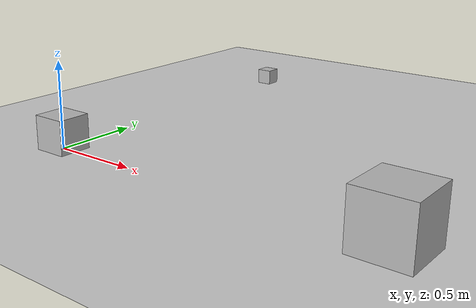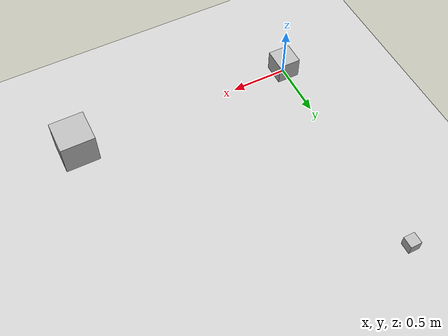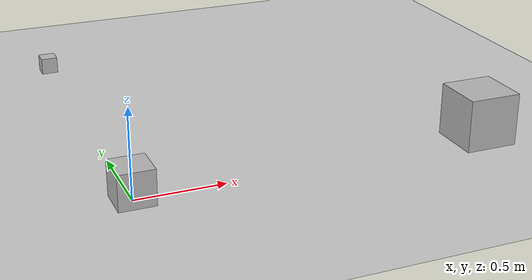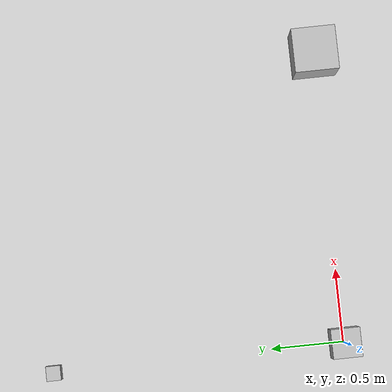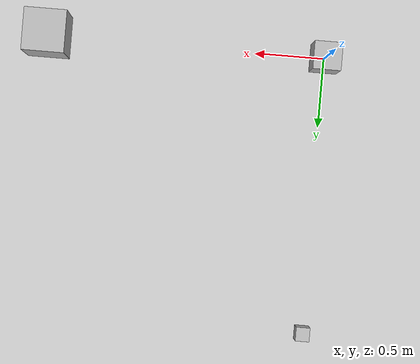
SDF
<?xml version="1.0" ?>
<sdf version="1.5">
  <world name="default">
    <!-- A global light source -->
    <include>
      <uri>model://sun</uri>
    </include>
    <!-- A ground plane -->
    <include>
      <uri>model://ground_plane</uri>
    </include>

    <model name="box1">
      <pose>0 0 0.1 0 0 0</pose>
      <link name="link">
        <kinematic>true</kinematic>
        <collision name="collision">
          <geometry>
            <box>
              <size>0.2 0.2 0.2</size>
            </box>
          </geometry>
          <surface>
            <friction>
              <ode>
                <mu>0.0</mu>
                <mu2>0.0</mu2>
              </ode>
            </friction>
          </surface>
        </collision>
        <visual name="visual">
          <geometry>
            <box>
              <size>0.2 0.2 0.2</size>
            </box>
          </geometry>
        </visual>
      </link>

      <!-- Apply a random velocity to the specified link-->
      <!-- In this example, we move a box around. A key property of the link
           is the frictionless surface -->
      <plugin name="random" filename="libRandomVelocityPlugin.so">

        <!-- Name of the link in this model that receives the velocity -->
        <link>link</link>

        <!-- Initial velocity that is applied to the link -->
        <initial_velocity>0 0 0</initial_velocity>

        <!-- Scaling factor that is used to compute a new velocity -->
        <velocity_factor>0.5</velocity_factor>

        <!-- Time, in seconds, between new velocities -->
        <update_period>1</update_period>

        <!-- Clamp the Z velocity value to zero. You can also clamp x and
             y values -->
        <min_z>0</min_z>
        <max_z>0</max_z>
      </plugin>
    </model>

    <model name="box2">
      <pose>2 0 0.15 0 0 0</pose>
      <link name="link">
        <kinematic>true</kinematic>
        <collision name="collision">
          <geometry>
            <box>
              <size>0.3 0.3 0.3</size>
            </box>
          </geometry>
          <surface>
            <friction>
              <ode>
                <mu>0.0</mu>
                <mu2>0.0</mu2>
              </ode>
            </friction>
          </surface>
        </collision>
        <visual name="visual">
          <geometry>
            <box>
              <size>0.3 0.3 0.3</size>
            </box>
          </geometry>
        </visual>
      </link>

      <!-- Apply a random velocity to the specified link-->
      <!-- In this example, we move a box around. A key property of the link
           is the frictionless surface -->
      <plugin name="random" filename="libRandomVelocityPlugin.so">

        <!-- Name of the link in this model that receives the velocity -->
        <link>link</link>

        <!-- Initial velocity that is applied to the link -->
        <initial_velocity>0 0 0</initial_velocity>

        <!-- Scaling factor that is used to compute a new velocity -->
        <velocity_factor>0.5</velocity_factor>

        <!-- Time, in seconds, between new velocities -->
        <update_period>1</update_period>

        <!-- Clamp the Z velocity value to zero. You can also clamp x and
             y values -->
        <min_z>0</min_z>
        <max_z>0</max_z>
      </plugin>
    </model>

    <model name="box3">
      <pose>0 2 0.05 0 0 0</pose>
      <link name="link">
        <kinematic>true</kinematic>
        <collision name="collision">
          <geometry>
            <box>
              <size>0.1 0.1 0.1</size>
            </box>
          </geometry>
          <surface>
            <friction>
              <ode>
                <mu>0.0</mu>
                <mu2>0.0</mu2>
              </ode>
            </friction>
          </surface>
        </collision>
        <visual name="visual">
          <geometry>
            <box>
              <size>0.1 0.1 0.1</size>
            </box>
          </geometry>
        </visual>
      </link>

      <!-- Apply a random velocity to the specified link-->
      <!-- In this example, we move a box around. A key property of the link
           is the frictionless surface -->
      <plugin name="random" filename="libRandomVelocityPlugin.so">

        <!-- Name of the link in this model that receives the velocity -->
        <link>link</link>

        <!-- Initial velocity that is applied to the link -->
        <initial_velocity>0 0 0</initial_velocity>

        <!-- Scaling factor that is used to compute a new velocity -->
        <velocity_factor>0.5</velocity_factor>

        <!-- Time, in seconds, between new velocities -->
        <update_period>1</update_period>

        <!-- Clamp the Z velocity value to zero. You can also clamp x and
             y values -->
        <min_z>0</min_z>
        <max_z>0</max_z>
      </plugin>
    </model>
  </world>
</sdf>
